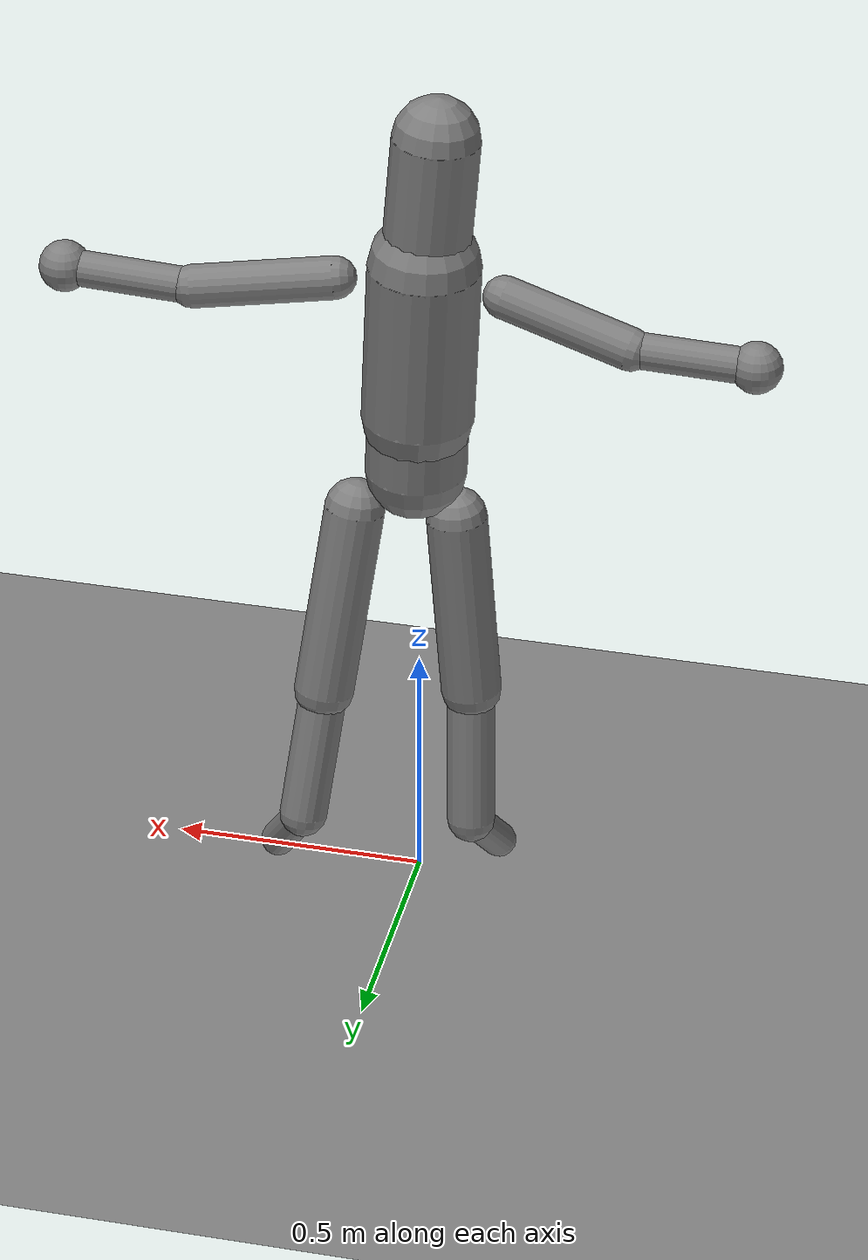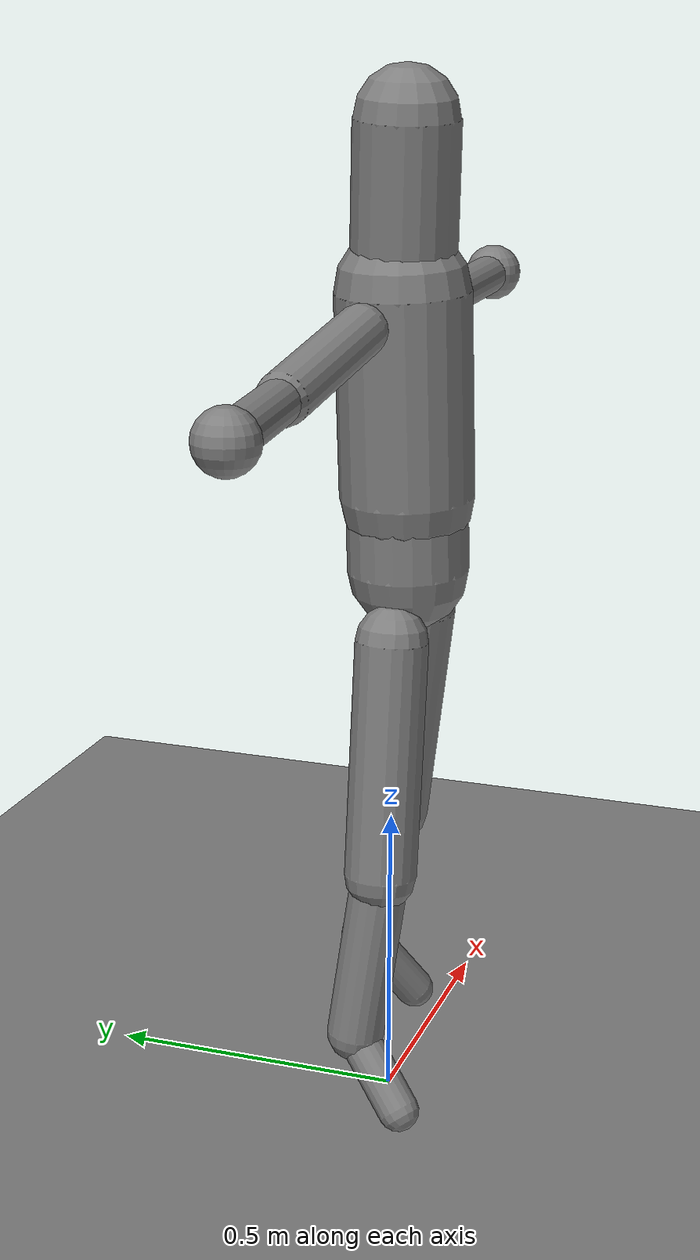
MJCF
<?xml version='1.0' encoding='utf-8'?>
<mujoco>
  <worldbody>
    <geom density="0" type="plane" size="20 20 1" pos="0 0 0" quat="-1 0 0 0" priority="0" contype="1" conaffinity="1" group="0" condim="3" solmix="1" solref="0.02 1" solimp="0.9 0.95 0.001" margin="0" gap="0" friction="1 0.05 0.05" fluidshape="none" fluidcoef="5 0.25 1.5 1 1" name="floor_0" />
    <body pos="0.0124 -0.02042 0.93203" quat="-1 0 0 0" gravcomp="0" name="Pelvis_1">
      <freejoint name="root_2" />
      <geom mass="10.2941" type="capsule" size="0.1 0.06170524" pos="-0.001955 0.001325 0.06165999" quat="0.0191405 0.560933 0.82764 0" priority="0" contype="1" conaffinity="1" group="0" condim="3" solmix="1" solref="0.02 1" solimp="0.9 0.95 0.001" margin="0" gap="0" friction="1 0.05 0.05" fluidshape="none" fluidcoef="5 0.25 1.5 1 1" name="g_Pelvis_3" />
      <body pos="-0.00391 0.00265 0.12332" quat="-1 0 0 0" gravcomp="0" name="Torso_4">
        <joint type="hinge" pos="0 0 0" axis="1 0 0" ref="0" armature="0.2" springref="0" springdamper="0 0" damping="2" stiffness="0" solreflimit="0.02 1" solimplimit="0.9 0.95 0.001 0.5 2" solreffriction="0.02 1" solimpfriction="0.9 0.95 0.001 0.5 2" frictionloss="0" limited="true" margin="0" range="-30.00002 30.00002" name="Torso_pitch_7" />
        <joint type="hinge" pos="0 0 0" axis="-1.192093E-07 1 0" ref="0" armature="0.2" springref="0" springdamper="0 0" damping="2" stiffness="0" solreflimit="0.02 1" solimplimit="0.9 0.95 0.001 0.5 2" solreffriction="0.02 1" solimpfriction="0.9 0.95 0.001 0.5 2" frictionloss="0" limited="true" margin="0" range="-20.00001 20.00001" name="Torso_roll_8" />
        <joint type="hinge" pos="0 0 0" axis="-1.192093E-07 0 1" ref="0" armature="0.2" springref="0" springdamper="0 0" damping="2" stiffness="0" solreflimit="0.02 1" solimplimit="0.9 0.95 0.001 0.5 2" solreffriction="0.02 1" solimpfriction="0.9 0.95 0.001 0.5 2" frictionloss="0" limited="true" margin="0" range="-34.99998 34.99998" name="Torso_yaw_9" />
        <geom mass="24.2647" type="capsule" size="0.1100001 0.1671811" pos="-0.007139999 0.003585 0.1669899" quat="0.02390149 0.4485869 0.8934197 0" priority="0" contype="1" conaffinity="1" group="0" condim="3" solmix="1" solref="0.02 1" solimp="0.9 0.95 0.001" margin="0" gap="0" friction="1 0.05 0.05" fluidshape="none" fluidcoef="5 0.25 1.5 1 1" name="g_Torso_10" />
        <body pos="-0.01428 0.00717 0.33398" quat="-1 0 0 0" gravcomp="0" name="Head_11">
          <joint type="hinge" pos="0 0 0" axis="1 0 0" ref="0" armature="0.2" springref="0" springdamper="0 0" damping="2" stiffness="0" solreflimit="0.02 1" solimplimit="0.9 0.95 0.001 0.5 2" solreffriction="0.02 1" solimpfriction="0.9 0.95 0.001 0.5 2" frictionloss="0" limited="true" margin="0" range="-40.00002 40.00002" name="Head_pitch_24" />
          <joint type="hinge" pos="0 0 0" axis="-1.192093E-07 1 0" ref="0" armature="0.2" springref="0" springdamper="0 0" damping="2" stiffness="0" solreflimit="0.02 1" solimplimit="0.9 0.95 0.001 0.5 2" solreffriction="0.02 1" solimpfriction="0.9 0.95 0.001 0.5 2" frictionloss="0" limited="true" margin="0" range="-30.00002 30.00002" name="Head_roll_25" />
          <joint type="hinge" pos="0 0 0" axis="-1.192093E-07 0 1" ref="0" armature="0.2" springref="0" springdamper="0 0" damping="2" stiffness="0" solreflimit="0.02 1" solimplimit="0.9 0.95 0.001 0.5 2" solreffriction="0.02 1" solimpfriction="0.9 0.95 0.001 0.5 2" frictionloss="0" limited="true" margin="0" range="-44.99999 44.99999" name="Head_yaw_26" />
          <geom mass="5.1471" type="capsule" size="0.08499998 0.134753" pos="-0.009879998 -0.00478 0.134305" quat="0.04075872 -0.4351512 0.8994343 0" priority="0" contype="1" conaffinity="1" group="0" condim="3" solmix="1" solref="0.02 1" solimp="0.9 0.95 0.001" margin="0" gap="0" friction="1 0.05 0.05" fluidshape="none" fluidcoef="5 0.25 1.5 1 1" name="g_Head_27" />
        </body>
        <body pos="0.15558 0.02332 0.2962" quat="-1 0 0 0" gravcomp="0" name="UpperArmL_12">
          <joint type="hinge" pos="0 0 0" axis="1 0 0" ref="0" armature="0.2" springref="0" springdamper="0 0" damping="2" stiffness="0" solreflimit="0.02 1" solimplimit="0.9 0.95 0.001 0.5 2" solreffriction="0.02 1" solimpfriction="0.9 0.95 0.001 0.5 2" frictionloss="0" limited="true" margin="0" range="-60.00014 120.0003" name="UpperArmL_pitch_28" />
          <joint type="hinge" pos="0 0 0" axis="-1.192093E-07 1 0" ref="0" armature="0.2" springref="0" springdamper="0 0" damping="2" stiffness="0" solreflimit="0.02 1" solimplimit="0.9 0.95 0.001 0.5 2" solreffriction="0.02 1" solimpfriction="0.9 0.95 0.001 0.5 2" frictionloss="0" limited="true" margin="0" range="-90.00021 20.00001" name="UpperArmL_roll_29" />
          <joint type="hinge" pos="0 0 0" axis="-1.192093E-07 0 1" ref="0" armature="0.2" springref="0" springdamper="0 0" damping="2" stiffness="0" solreflimit="0.02 1" solimplimit="0.9 0.95 0.001 0.5 2" solreffriction="0.02 1" solimpfriction="0.9 0.95 0.001 0.5 2" frictionloss="0" limited="true" margin="0" range="-60.00014 60.00014" name="UpperArmL_yaw_30" />
          <geom mass="2.2059" type="capsule" size="0.042 0.137714" pos="0.13554 0.017055 -0.01741505" quat="0.7504858 0.08250878 -0.6557158 0" priority="0" contype="1" conaffinity="1" group="0" condim="3" solmix="1" solref="0.02 1" solimp="0.9 0.95 0.001" margin="0" gap="0" friction="1 0.05 0.05" fluidshape="none" fluidcoef="5 0.25 1.5 1 1" name="g_UpperArmL_31" />
          <body pos="0.27108 0.03411 -0.03483009" quat="-1 0 0 0" gravcomp="0" name="ForearmL_32">
            <joint type="hinge" pos="0 0 0" axis="1 0 0" ref="0" armature="0.2" springref="0" springdamper="0 0" damping="2" stiffness="0" solreflimit="0.02 1" solimplimit="0.9 0.95 0.001 0.5 2" solreffriction="0.02 1" solimpfriction="0.9 0.95 0.001 0.5 2" frictionloss="0" limited="true" margin="0" range="0 139.9999" name="ForearmL_pitch_44" />
            <geom mass="1.4706" type="capsule" size="0.035 0.127338" pos="0.1272049 -0.004730001 0.003375053" quat="0.6976733 -0.02662091 -0.7159213 0" priority="0" contype="1" conaffinity="1" group="0" condim="3" solmix="1" solref="0.02 1" solimp="0.9 0.95 0.001" margin="0" gap="0" friction="1 0.05 0.05" fluidshape="none" fluidcoef="5 0.25 1.5 1 1" name="g_ForearmL_45" />
            <body pos="0.2544099 -0.009460002 0.006750107" quat="-1 0 0 0" gravcomp="0" name="GloveL_46">
              <joint type="hinge" pos="0 0 0" axis="1 0 0" ref="0" armature="0.2" springref="0" springdamper="0 0" damping="2" stiffness="0" solreflimit="0.02 1" solimplimit="0.9 0.95 0.001 0.5 2" solreffriction="0.02 1" solimpfriction="0.9 0.95 0.001 0.5 2" frictionloss="0" limited="true" margin="0" range="-60.00014 60.00014" name="GloveL_pitch_56" />
              <joint type="hinge" pos="0 0 0" axis="-1.192093E-07 0 1" ref="0" armature="0.2" springref="0" springdamper="0 0" damping="2" stiffness="0" solreflimit="0.02 1" solimplimit="0.9 0.95 0.001 0.5 2" solreffriction="0.02 1" solimpfriction="0.9 0.95 0.001 0.5 2" frictionloss="0" limited="true" margin="0" range="-24.99998 24.99998" name="GloveL_yaw_57" />
              <geom mass="0.7353" type="sphere" size="0.05" pos="0 0 0" quat="-1 0 0 0" priority="0" contype="1" conaffinity="1" group="0" condim="3" solmix="1" solref="0.02 1" solimp="0.9 0.95 0.001" margin="0" gap="0" friction="1 0.05 0.05" fluidshape="none" fluidcoef="5 0.25 1.5 1 1" name="g_GloveL_58" />
            </body>
          </body>
        </body>
        <body pos="-0.17256 0.02333 0.2962" quat="-1 0 0 0" gravcomp="0" name="UpperArmR_13">
          <joint type="hinge" pos="0 0 0" axis="1 0 0" ref="0" armature="0.2" springref="0" springdamper="0 0" damping="2" stiffness="0" solreflimit="0.02 1" solimplimit="0.9 0.95 0.001 0.5 2" solreffriction="0.02 1" solimpfriction="0.9 0.95 0.001 0.5 2" frictionloss="0" limited="true" margin="0" range="-60.00014 120.0003" name="UpperArmR_pitch_33" />
          <joint type="hinge" pos="0 0 0" axis="-1.192093E-07 1 0" ref="0" armature="0.2" springref="0" springdamper="0 0" damping="2" stiffness="0" solreflimit="0.02 1" solimplimit="0.9 0.95 0.001 0.5 2" solreffriction="0.02 1" solimpfriction="0.9 0.95 0.001 0.5 2" frictionloss="0" limited="true" margin="0" range="-20.00001 90.00021" name="UpperArmR_roll_34" />
          <joint type="hinge" pos="0 0 0" axis="-1.192093E-07 0 1" ref="0" armature="0.2" springref="0" springdamper="0 0" damping="2" stiffness="0" solreflimit="0.02 1" solimplimit="0.9 0.95 0.001 0.5 2" solreffriction="0.02 1" solimpfriction="0.9 0.95 0.001 0.5 2" frictionloss="0" limited="true" margin="0" range="-60.00014 60.00014" name="UpperArmR_yaw_35" />
          <geom mass="2.2059" type="capsule" size="0.04200001 0.129151" pos="-0.124425 0.017075 -0.03011513" quat="0.7852313 0.08418503 0.6134532 0" priority="0" contype="1" conaffinity="1" group="0" condim="3" solmix="1" solref="0.02 1" solimp="0.9 0.95 0.001" margin="0" gap="0" friction="1 0.05 0.05" fluidshape="none" fluidcoef="5 0.25 1.5 1 1" name="g_UpperArmR_36" />
          <body pos="-0.24885 0.03415 -0.06023002" quat="-1 0 0 0" gravcomp="0" name="ForearmR_37">
            <joint type="hinge" pos="0 0 0" axis="1 0 0" ref="0" armature="0.2" springref="0" springdamper="0 0" damping="2" stiffness="0" solreflimit="0.02 1" solimplimit="0.9 0.95 0.001 0.5 2" solreffriction="0.02 1" solimpfriction="0.9 0.95 0.001 0.5 2" frictionloss="0" limited="true" margin="0" range="0 139.9999" name="ForearmR_pitch_47" />
            <geom mass="1.4706" type="capsule" size="0.035 0.119485" pos="-0.119265 -0.003835 -0.006150007" quat="0.7250761 -0.0221329 0.6883131 0" priority="0" contype="1" conaffinity="1" group="0" condim="3" solmix="1" solref="0.02 1" solimp="0.9 0.95 0.001" margin="0" gap="0" friction="1 0.05 0.05" fluidshape="none" fluidcoef="5 0.25 1.5 1 1" name="g_ForearmR_48" />
            <body pos="-0.23853 -0.00767 -0.01230001" quat="-1 0 0 0" gravcomp="0" name="GloveR_49">
              <joint type="hinge" pos="0 0 0" axis="1 0 0" ref="0" armature="0.2" springref="0" springdamper="0 0" damping="2" stiffness="0" solreflimit="0.02 1" solimplimit="0.9 0.95 0.001 0.5 2" solreffriction="0.02 1" solimpfriction="0.9 0.95 0.001 0.5 2" frictionloss="0" limited="true" margin="0" range="-60.00014 60.00014" name="GloveR_pitch_59" />
              <joint type="hinge" pos="0 0 0" axis="-1.192093E-07 0 1" ref="0" armature="0.2" springref="0" springdamper="0 0" damping="2" stiffness="0" solreflimit="0.02 1" solimplimit="0.9 0.95 0.001 0.5 2" solreffriction="0.02 1" solimpfriction="0.9 0.95 0.001 0.5 2" frictionloss="0" limited="true" margin="0" range="-24.99998 24.99998" name="GloveR_yaw_60" />
              <geom mass="0.7353" type="sphere" size="0.05" pos="0 0 0" quat="-1 0 0 0" priority="0" contype="1" conaffinity="1" group="0" condim="3" solmix="1" solref="0.02 1" solimp="0.9 0.95 0.001" margin="0" gap="0" friction="1 0.05 0.05" fluidshape="none" fluidcoef="5 0.25 1.5 1 1" name="g_GloveR_61" />
            </body>
          </body>
        </body>
      </body>
      <body pos="0.11895 0.01464 -0.09920001" quat="-1 0 0 0" gravcomp="0" name="ThighL_5">
        <joint type="hinge" pos="0 0 0" axis="1 0 0" ref="0" armature="0.2" springref="0" springdamper="0 0" damping="2" stiffness="0" solreflimit="0.02 1" solimplimit="0.9 0.95 0.001 0.5 2" solreffriction="0.02 1" solimpfriction="0.9 0.95 0.001 0.5 2" frictionloss="0" limited="true" margin="0" range="-109.9999 20.00001" name="ThighL_pitch_14" />
        <joint type="hinge" pos="0 0 0" axis="-1.192093E-07 1 0" ref="0" armature="0.2" springref="0" springdamper="0 0" damping="2" stiffness="0" solreflimit="0.02 1" solimplimit="0.9 0.95 0.001 0.5 2" solreffriction="0.02 1" solimpfriction="0.9 0.95 0.001 0.5 2" frictionloss="0" limited="true" margin="0" range="-20.00001 44.99999" name="ThighL_roll_15" />
        <joint type="hinge" pos="0 0 0" axis="-1.192093E-07 0 1" ref="0" armature="0.2" springref="0" springdamper="0 0" damping="2" stiffness="0" solreflimit="0.02 1" solimplimit="0.9 0.95 0.001 0.5 2" solreffriction="0.02 1" solimpfriction="0.9 0.95 0.001 0.5 2" frictionloss="0" limited="true" margin="0" range="-30.00002 30.00002" name="ThighL_yaw_16" />
        <geom mass="8.4559" type="capsule" size="0.06 0.202172" pos="0.02548501 0.029285 -0.19841" quat="0.9953369 0.07276519 -0.06332319 0" priority="0" contype="1" conaffinity="1" group="0" condim="3" solmix="1" solref="0.02 1" solimp="0.9 0.95 0.001" margin="0" gap="0" friction="1 0.05 0.05" fluidshape="none" fluidcoef="5 0.25 1.5 1 1" name="g_ThighL_17" />
        <body pos="0.05097 0.05857 -0.39682" quat="-1 0 0 0" gravcomp="0" name="ShinL_18">
          <joint type="hinge" pos="0 0 0" axis="1 0 0" ref="0" armature="0.2" springref="0" springdamper="0 0" damping="2" stiffness="0" solreflimit="0.02 1" solimplimit="0.9 0.95 0.001 0.5 2" solreffriction="0.02 1" solimpfriction="0.9 0.95 0.001 0.5 2" frictionloss="0" limited="true" margin="0" range="0 130.0001" name="ShinL_pitch_38" />
          <geom mass="3.6765" type="capsule" size="0.048 0.138316" pos="0.01563001 0.028345 -0.134475" quat="0.9930336 0.103184 -0.05689748 0" priority="0" contype="1" conaffinity="1" group="0" condim="3" solmix="1" solref="0.02 1" solimp="0.9 0.95 0.001" margin="0" gap="0" friction="1 0.05 0.05" fluidshape="none" fluidcoef="5 0.25 1.5 1 1" name="g_ShinL_39" />
          <body pos="0.03126001 0.05669001 -0.26895" quat="-1 0 0 0" gravcomp="0" name="FootL_40">
            <joint type="hinge" pos="0 0 0" axis="1 0 0" ref="0" armature="0.2" springref="0" springdamper="0 0" damping="2" stiffness="0" solreflimit="0.02 1" solimplimit="0.9 0.95 0.001 0.5 2" solreffriction="0.02 1" solimpfriction="0.9 0.95 0.001 0.5 2" frictionloss="0" limited="true" margin="0" range="-40.00002 24.99998" name="FootL_pitch_50" />
            <joint type="hinge" pos="0 0 0" axis="-1.192093E-07 1 0" ref="0" armature="0.2" springref="0" springdamper="0 0" damping="2" stiffness="0" solreflimit="0.02 1" solimplimit="0.9 0.95 0.001 0.5 2" solreffriction="0.02 1" solimpfriction="0.9 0.95 0.001 0.5 2" frictionloss="0" limited="true" margin="0" range="-20.00001 20.00001" name="FootL_roll_51" />
            <geom mass="1.1029" type="capsule" size="0.035 0.0799195" pos="0.03536999 -0.03493501 -0.06257498" quat="0.9441863 -0.2314841 -0.2343661 0" priority="0" contype="1" conaffinity="1" group="0" condim="3" solmix="1" solref="0.02 1" solimp="0.9 0.95 0.001" margin="0" gap="0" friction="1 0.05 0.05" fluidshape="none" fluidcoef="5 0.25 1.5 1 1" name="g_FootL_52" />
          </body>
        </body>
      </body>
      <body pos="-0.08148 0.00117 -0.09926999" quat="-1 0 0 0" gravcomp="0" name="ThighR_6">
        <joint type="hinge" pos="0 0 0" axis="1 0 0" ref="0" armature="0.2" springref="0" springdamper="0 0" damping="2" stiffness="0" solreflimit="0.02 1" solimplimit="0.9 0.95 0.001 0.5 2" solreffriction="0.02 1" solimpfriction="0.9 0.95 0.001 0.5 2" frictionloss="0" limited="true" margin="0" range="-109.9999 20.00001" name="ThighR_pitch_19" />
        <joint type="hinge" pos="0 0 0" axis="-1.192093E-07 1 0" ref="0" armature="0.2" springref="0" springdamper="0 0" damping="2" stiffness="0" solreflimit="0.02 1" solimplimit="0.9 0.95 0.001 0.5 2" solreffriction="0.02 1" solimpfriction="0.9 0.95 0.001 0.5 2" frictionloss="0" limited="true" margin="0" range="-44.99999 20.00001" name="ThighR_roll_20" />
        <joint type="hinge" pos="0 0 0" axis="-1.192093E-07 0 1" ref="0" armature="0.2" springref="0" springdamper="0 0" damping="2" stiffness="0" solreflimit="0.02 1" solimplimit="0.9 0.95 0.001 0.5 2" solreffriction="0.02 1" solimpfriction="0.9 0.95 0.001 0.5 2" frictionloss="0" limited="true" margin="0" range="-30.00002 30.00002" name="ThighR_yaw_21" />
        <geom mass="8.4559" type="capsule" size="0.06 0.199232" pos="-0.016365 0.00234 -0.198545" quat="0.9991375 0.005877617 0.04110568 0" priority="0" contype="1" conaffinity="1" group="0" condim="3" solmix="1" solref="0.02 1" solimp="0.9 0.95 0.001" margin="0" gap="0" friction="1 0.05 0.05" fluidshape="none" fluidcoef="5 0.25 1.5 1 1" name="g_ThighR_22" />
        <body pos="-0.03273 0.00468 -0.39709" quat="-1 0 0 0" gravcomp="0" name="ShinR_23">
          <joint type="hinge" pos="0 0 0" axis="1 0 0" ref="0" armature="0.2" springref="0" springdamper="0 0" damping="2" stiffness="0" solreflimit="0.02 1" solimplimit="0.9 0.95 0.001 0.5 2" solreffriction="0.02 1" solimpfriction="0.9 0.95 0.001 0.5 2" frictionloss="0" limited="true" margin="0" range="0 130.0001" name="ShinR_pitch_41" />
          <geom mass="3.6765" type="capsule" size="0.048 0.146178" pos="-0.005034998 0.01908 -0.1448399" quat="0.997709 0.0654127 0.0172617 0" priority="0" contype="1" conaffinity="1" group="0" condim="3" solmix="1" solref="0.02 1" solimp="0.9 0.95 0.001" margin="0" gap="0" friction="1 0.05 0.05" fluidshape="none" fluidcoef="5 0.25 1.5 1 1" name="g_ShinR_42" />
          <body pos="-0.01007 0.03816 -0.2896799" quat="-1 0 0 0" gravcomp="0" name="FootR_43">
            <joint type="hinge" pos="0 0 0" axis="1 0 0" ref="0" armature="0.2" springref="0" springdamper="0 0" damping="2" stiffness="0" solreflimit="0.02 1" solimplimit="0.9 0.95 0.001 0.5 2" solreffriction="0.02 1" solimpfriction="0.9 0.95 0.001 0.5 2" frictionloss="0" limited="true" margin="0" range="-40.00002 24.99998" name="FootR_pitch_53" />
            <joint type="hinge" pos="0 0 0" axis="-1.192093E-07 1 0" ref="0" armature="0.2" springref="0" springdamper="0 0" damping="2" stiffness="0" solreflimit="0.02 1" solimplimit="0.9 0.95 0.001 0.5 2" solreffriction="0.02 1" solimpfriction="0.9 0.95 0.001 0.5 2" frictionloss="0" limited="true" margin="0" range="-20.00001 20.00001" name="FootR_roll_54" />
            <geom mass="1.1029" type="capsule" size="0.035 0.0741313" pos="-0.01977001 -0.045005 -0.05549002" quat="0.9350232 -0.3246441 0.142611 0" priority="0" contype="1" conaffinity="1" group="0" condim="3" solmix="1" solref="0.02 1" solimp="0.9 0.95 0.001" margin="0" gap="0" friction="1 0.05 0.05" fluidshape="none" fluidcoef="5 0.25 1.5 1 1" name="g_FootR_55" />
          </body>
        </body>
      </body>
    </body>
  </worldbody>
  <contact />
  <tendon />
  <equality />
  <actuator>
    <position joint="Torso_pitch_7" ctrllimited="true" forcelimited="true" ctrlrange="-0.523599 0.523599" forcerange="-150 150" lengthrange="0 0" gear="1" kp="400" kv="104.719812" name="a_Torso_pitch_62" />
    <position joint="Torso_roll_8" ctrllimited="true" forcelimited="true" ctrlrange="-0.349066 0.349066" forcerange="-100 100" lengthrange="0 0" gear="1" kp="400" kv="89.81155" name="a_Torso_roll_63" />
    <position joint="Torso_yaw_9" ctrllimited="true" forcelimited="true" ctrlrange="-0.610865 0.610865" forcerange="-60 60" lengthrange="0 0" gear="1" kp="400" kv="122.172989" name="a_Torso_yaw_64" />
    <position joint="Head_pitch_24" ctrllimited="true" forcelimited="true" ctrlrange="-0.698132 0.698132" forcerange="-15 15" lengthrange="0 0" gear="1" kp="60" kv="20.9439607" name="a_Head_pitch_65" />
    <position joint="Head_roll_25" ctrllimited="true" forcelimited="true" ctrlrange="-0.523599 0.523599" forcerange="-10 10" lengthrange="0 0" gear="1" kp="60" kv="15.7079719" name="a_Head_roll_66" />
    <position joint="Head_yaw_26" ctrllimited="true" forcelimited="true" ctrlrange="-0.785398 0.785398" forcerange="-8 8" lengthrange="0 0" gear="1" kp="60" kv="23.5619398" name="a_Head_yaw_67" />
    <position joint="ThighL_pitch_14" ctrllimited="true" forcelimited="true" ctrlrange="-1.91986 0.349066" forcerange="-140 200" lengthrange="0 0" gear="1" kp="500" kv="189.077203" name="a_ThighL_pitch_68" />
    <position joint="ThighL_roll_15" ctrllimited="true" forcelimited="true" ctrlrange="-0.349066 0.785398" forcerange="-80 80" lengthrange="0 0" gear="1" kp="500" kv="94.5386687" name="a_ThighL_roll_69" />
    <position joint="ThighL_yaw_16" ctrllimited="true" forcelimited="true" ctrlrange="-0.523599 0.523599" forcerange="-40 40" lengthrange="0 0" gear="1" kp="500" kv="87.2665104" name="a_ThighL_yaw_70" />
    <position joint="ShinL_pitch_38" ctrllimited="true" forcelimited="true" ctrlrange="0 2.26893" forcerange="-200 100" lengthrange="0 0" gear="1" kp="400" kv="113.4465" name="a_ShinL_pitch_71" />
    <position joint="FootL_pitch_50" ctrllimited="true" forcelimited="true" ctrlrange="-0.698132 0.436332" forcerange="-45 120" lengthrange="0 0" gear="1" kp="200" kv="37.8154683" name="a_FootL_pitch_72" />
    <position joint="FootL_roll_51" ctrllimited="true" forcelimited="true" ctrlrange="-0.349066 0.349066" forcerange="-20 20" lengthrange="0 0" gear="1" kp="200" kv="34.9066012" name="a_FootL_roll_73" />
    <position joint="ThighR_pitch_19" ctrllimited="true" forcelimited="true" ctrlrange="-1.91986 0.349066" forcerange="-140 200" lengthrange="0 0" gear="1" kp="500" kv="189.077203" name="a_ThighR_pitch_74" />
    <position joint="ThighR_roll_20" ctrllimited="true" forcelimited="true" ctrlrange="-0.785398 0.349066" forcerange="-80 80" lengthrange="0 0" gear="1" kp="500" kv="94.5386687" name="a_ThighR_roll_75" />
    <position joint="ThighR_yaw_21" ctrllimited="true" forcelimited="true" ctrlrange="-0.523599 0.523599" forcerange="-40 40" lengthrange="0 0" gear="1" kp="500" kv="87.2665104" name="a_ThighR_yaw_76" />
    <position joint="ShinR_pitch_41" ctrllimited="true" forcelimited="true" ctrlrange="0 2.26893" forcerange="-200 100" lengthrange="0 0" gear="1" kp="400" kv="113.4465" name="a_ShinR_pitch_77" />
    <position joint="FootR_pitch_53" ctrllimited="true" forcelimited="true" ctrlrange="-0.698132 0.436332" forcerange="-45 120" lengthrange="0 0" gear="1" kp="200" kv="37.8154683" name="a_FootR_pitch_78" />
    <position joint="FootR_roll_54" ctrllimited="true" forcelimited="true" ctrlrange="-0.349066 0.349066" forcerange="-20 20" lengthrange="0 0" gear="1" kp="200" kv="34.9066012" name="a_FootR_roll_79" />
    <position joint="UpperArmL_pitch_28" ctrllimited="true" forcelimited="true" ctrlrange="-1.0472 2.0944" forcerange="-60 60" lengthrange="0 0" gear="1" kp="100" kv="39.2700042" name="a_UpperArmL_pitch_80" />
    <position joint="UpperArmL_roll_29" ctrllimited="true" forcelimited="true" ctrlrange="-1.5708 0.349066" forcerange="-60 60" lengthrange="0 0" gear="1" kp="100" kv="23.9983253" name="a_UpperArmL_roll_81" />
    <position joint="UpperArmL_yaw_30" ctrllimited="true" forcelimited="true" ctrlrange="-1.0472 1.0472" forcerange="-25 25" lengthrange="0 0" gear="1" kp="100" kv="34.9066666" name="a_UpperArmL_yaw_82" />
    <position joint="ForearmL_pitch_44" ctrllimited="true" forcelimited="true" ctrlrange="0 2.44346" forcerange="-40 60" lengthrange="0 0" gear="1" kp="60" kv="18.32595" name="a_ForearmL_pitch_83" />
    <position joint="GloveL_pitch_56" ctrllimited="true" forcelimited="true" ctrlrange="-1.0472 1.0472" forcerange="-10 10" lengthrange="0 0" gear="1" kp="20" kv="6.98133332" name="a_GloveL_pitch_84" />
    <position joint="GloveL_yaw_57" ctrllimited="true" forcelimited="true" ctrlrange="-0.436332 0.436332" forcerange="-5 5" lengthrange="0 0" gear="1" kp="20" kv="2.90887988" name="a_GloveL_yaw_85" />
    <position joint="UpperArmR_pitch_33" ctrllimited="true" forcelimited="true" ctrlrange="-1.0472 2.0944" forcerange="-60 60" lengthrange="0 0" gear="1" kp="100" kv="39.2700042" name="a_UpperArmR_pitch_86" />
    <position joint="UpperArmR_roll_34" ctrllimited="true" forcelimited="true" ctrlrange="-0.349066 1.5708" forcerange="-60 60" lengthrange="0 0" gear="1" kp="100" kv="23.9983253" name="a_UpperArmR_roll_87" />
    <position joint="UpperArmR_yaw_35" ctrllimited="true" forcelimited="true" ctrlrange="-1.0472 1.0472" forcerange="-25 25" lengthrange="0 0" gear="1" kp="100" kv="34.9066666" name="a_UpperArmR_yaw_88" />
    <position joint="ForearmR_pitch_47" ctrllimited="true" forcelimited="true" ctrlrange="0 2.44346" forcerange="-40 60" lengthrange="0 0" gear="1" kp="60" kv="18.32595" name="a_ForearmR_pitch_89" />
    <position joint="GloveR_pitch_59" ctrllimited="true" forcelimited="true" ctrlrange="-1.0472 1.0472" forcerange="-10 10" lengthrange="0 0" gear="1" kp="20" kv="6.98133332" name="a_GloveR_pitch_90" />
    <position joint="GloveR_yaw_60" ctrllimited="true" forcelimited="true" ctrlrange="-0.436332 0.436332" forcerange="-5 5" lengthrange="0 0" gear="1" kp="20" kv="2.90887988" name="a_GloveR_yaw_91" />
  </actuator>
  <sensor>
    <framepos objtype="xbody" objname="FootL_40" cutoff="0" name="s_FootL_pos_92" />
    <framepos objtype="xbody" objname="FootR_43" cutoff="0" name="s_FootR_pos_93" />
    <framepos objtype="xbody" objname="Head_11" cutoff="0" name="s_Head_pos_94" />
    <framezaxis objtype="xbody" objname="Pelvis_1" cutoff="0" name="s_Pelvis_up_95" />
    <subtreecom body="Pelvis_1" cutoff="0" name="s_com_96" />
  </sensor>
  <compiler coordinate="local" />
  <option gravity="0 0 -9.81" timestep="0.004999993" />
  <option impratio="1" magnetic="0 0 0" wind="0 0 0" density="0" viscosity="0" o_margin="0" o_solref="0.02 1" o_solimp="0.9 0.95 0.001 0.5 2" integrator="implicitfast" cone="pyramidal" jacobian="auto" solver="Newton" iterations="20" tolerance="1E-08" noslip_iterations="0" noslip_tolerance="1E-06" ccd_iterations="50" ccd_tolerance="1E-06">
    <flag constraint="enable" equality="enable" frictionloss="enable" limit="enable" contact="enable" spring="enable" damper="enable" gravity="enable" clampctrl="enable" warmstart="enable" filterparent="enable" actuation="enable" refsafe="enable" override="disable" energy="disable" fwdinv="disable" multiccd="disable" />
  </option>
  <size memory="-1" />
  <custom />
  <asset />
</mujoco>
